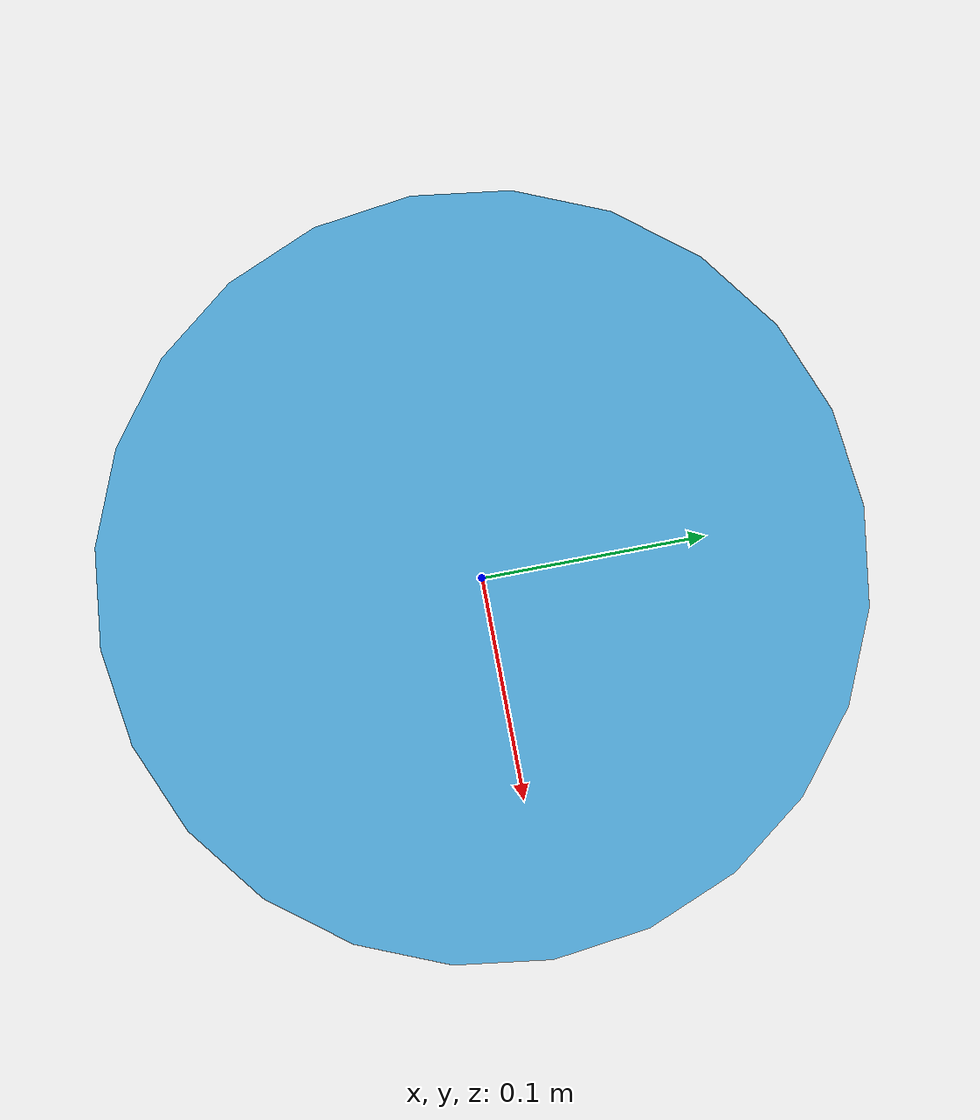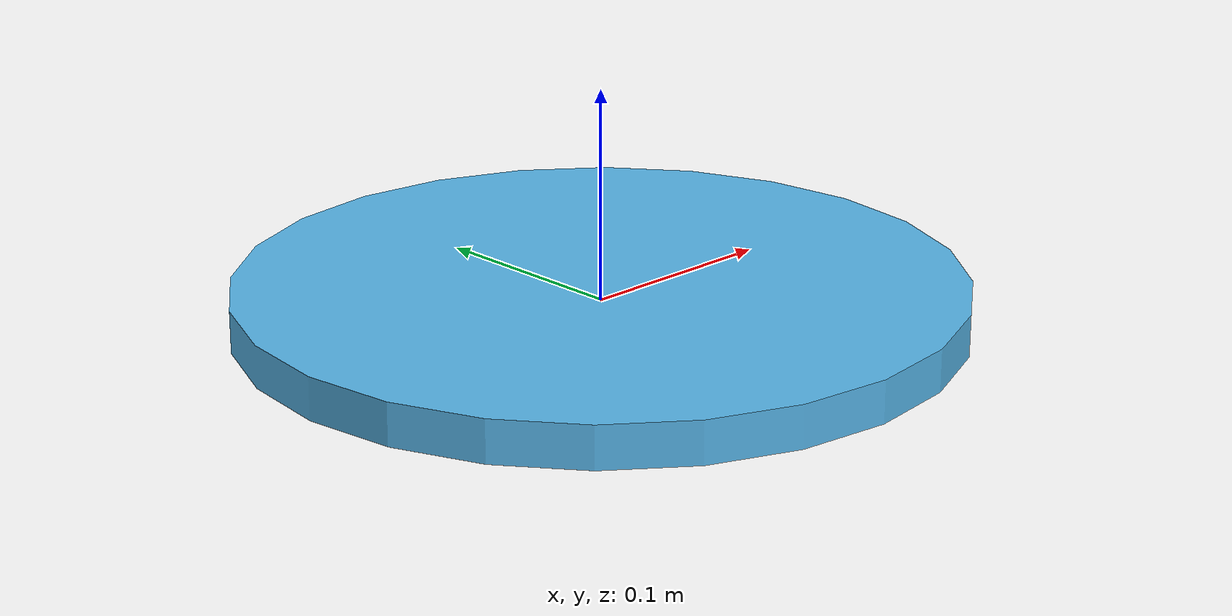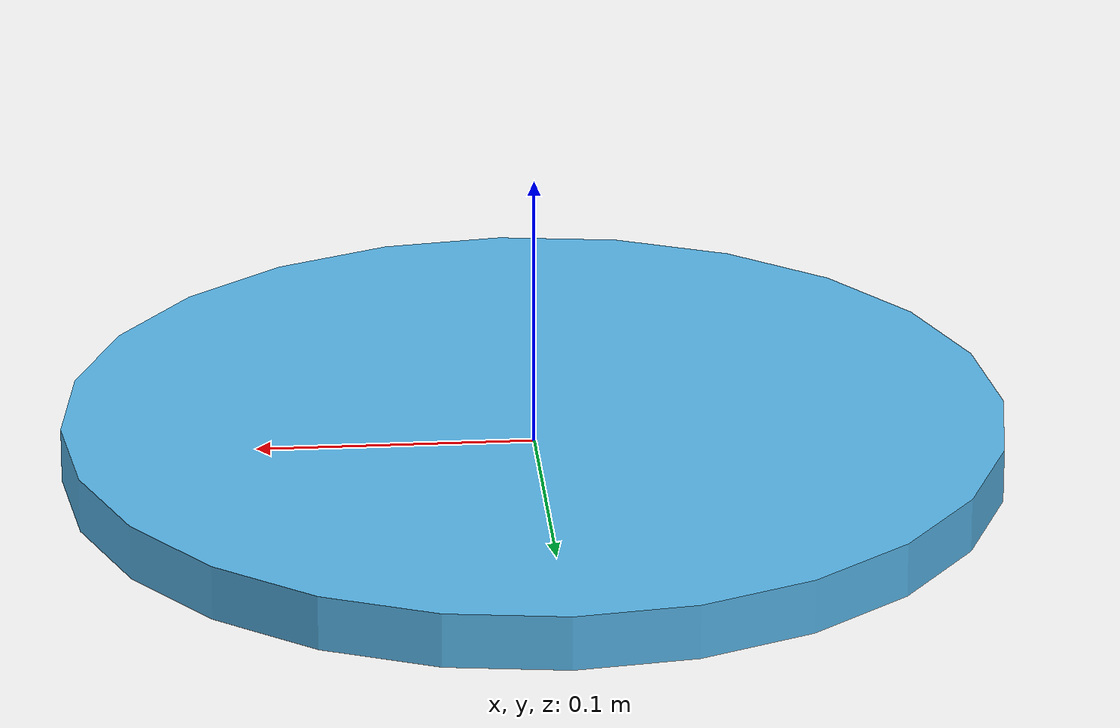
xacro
<?xml version="1.0"  encoding="utf-8" ?>
<robot name="robotic_arm" xmlns:xacro="http://www.ros.org/wiki/xacro" >

  <link name="world" />

  <link name="base_link">

    <inertial>
      <mass value="0.00244239" />
      <inertia ixx="1.719e-05" ixy="0" ixz="0" iyy="1.719e-05" iyz="0" izz="3.419e-05" />
    </inertial>

    <visual name="visual">
      <geometry>
        <cylinder length="0.02" radius="0.17" />
      </geometry>
    </visual>

    <collision name="collision">
      <geometry>
        <cylinder length="0.02" radius="0.17" />
      </geometry>
    </collision>
  </link>

  <joint name="world_base_joint" type="fixed">
    <child link="base_link" />
    <parent link="world" />
  </joint>

</robot>
